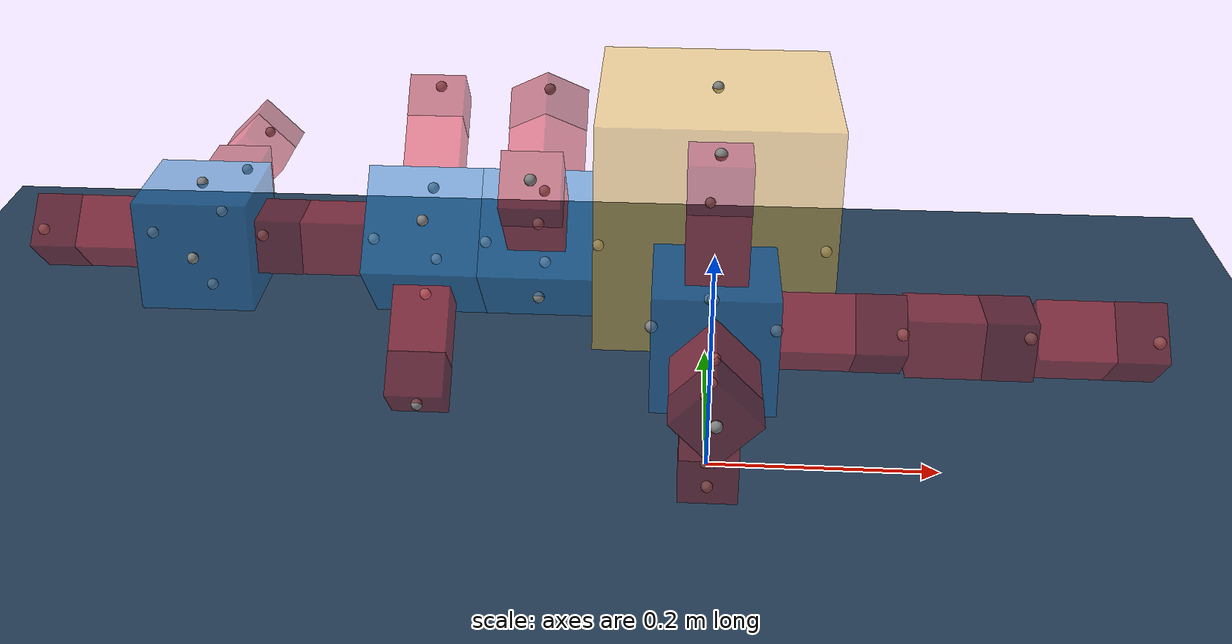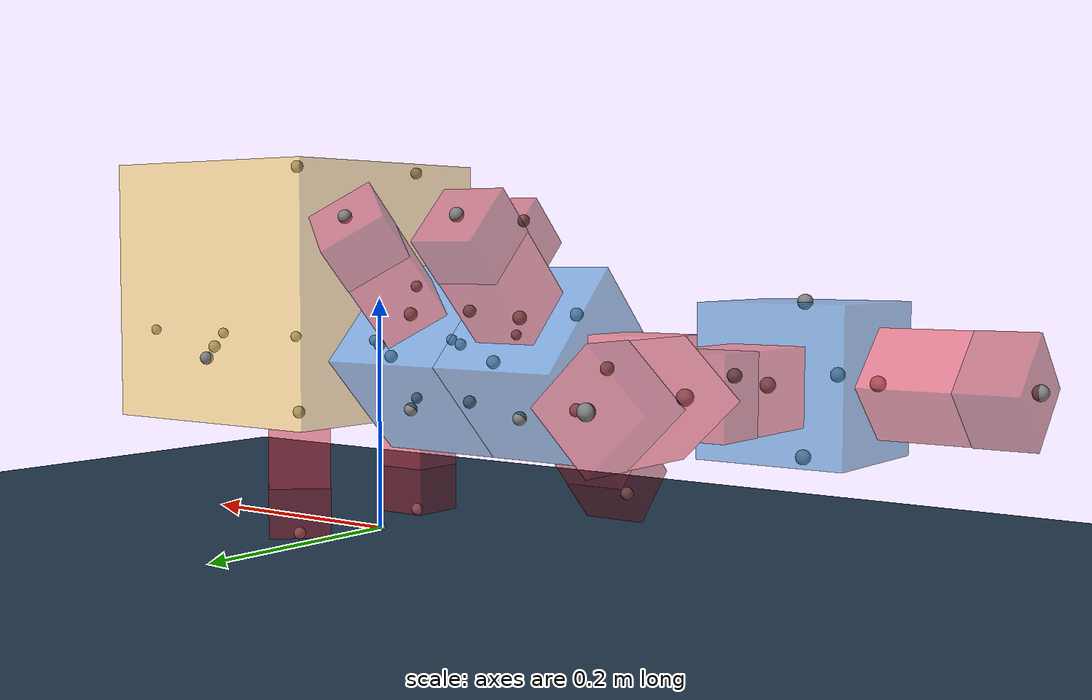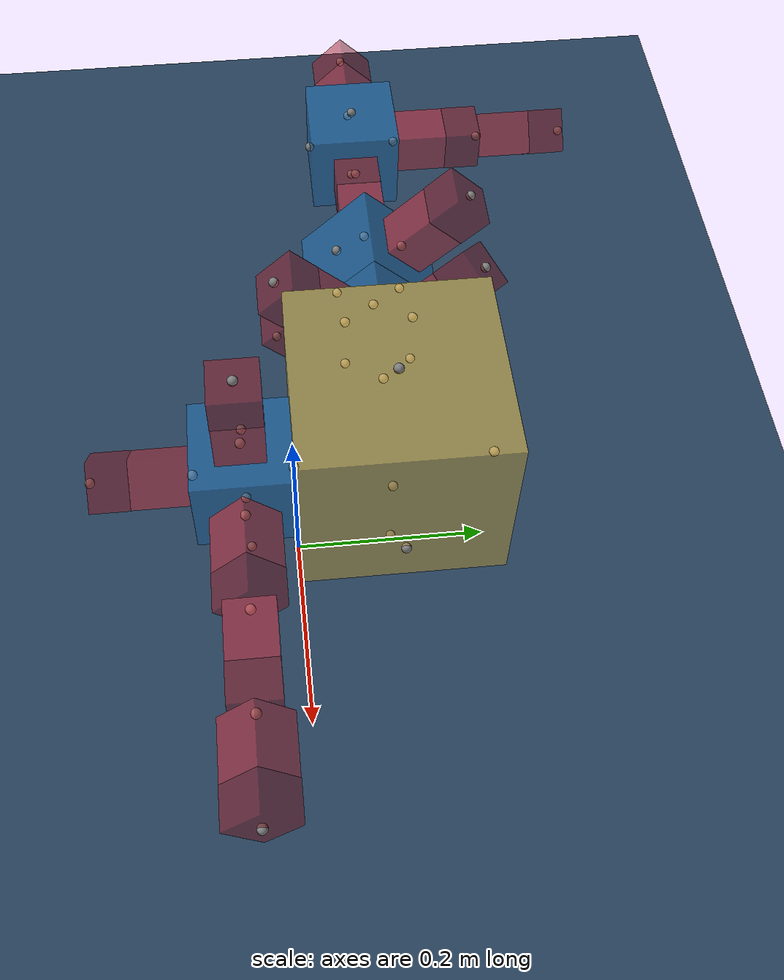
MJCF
<mujoco model="Simple Flat World">
  <compiler angle="radian"/>

  <option integrator="implicitfast"/>

  <visual>
    <global offwidth="1280" offheight="960"/>
  </visual>

  <default>
    <default class="robot1_main">
      <default class="robot1_0-8-3-main">
        <default class="robot1_0-8-3-8-15-0-main"/>
        <default class="robot1_0-8-3-8-28-2-main"/>
        <default class="robot1_0-8-3-8-9-4-main"/>
        <default class="robot1_0-8-3-15-24-5-main"/>
        <default class="robot1_0-8-3-15-3-0-main"/>
        <default class="robot1_0-8-3-15-13-4-main"/>
      </default>
      <default class="robot1_0-18-1-main"/>
      <default class="robot1_0-27-5-main"/>
      <default class="robot1_18-5-5-main"/>
      <default class="robot1_18-12-3-main"/>
      <default class="robot1_18-20-2-main"/>
      <default class="robot1_18-22-0-main"/>
      <default class="robot1_3-10-0-main"/>
      <default class="robot1_5-23-0-main"/>
      <default class="robot1_23-26-0-main"/>
      <default class="robot1_10-25-2-main"/>
      <default class="robot1_10-16-0-main"/>
      <default class="robot1_25-2-0-main"/>
    </default>
  </default>

  <asset>
    <texture type="2d" colorspace="auto" name="floor" builtin="checker" rgb1="0.1 0.2 0.3" rgb2="0.2 0.3 0.4" width="600" height="600"/>
    <material name="floor" texture="floor" texuniform="true" texrepeat="3 3"/>
  </asset>

  <worldbody>
    <site pos="0 0 0"/>
    <camera name="ortho-cam" pos="-5 0 5" quat="0.653281 0.270598 -0.270598 -0.653281" orthographic="true" fovy="5"/>
    <light name="light" pos="0 0 1" dir="0 0 -1" type="directional" castshadow="false"/>
    <body name="floor">
      <geom name="floor" size="5 5 0.5" type="plane" material="floor"/>
    </body>
    <body name="robot1_world" pos="0 0 0.21">
      <joint type="free"/>
      <body name="robot1_core">
        <geom name="robot1_core" size="0.1 0.1 0.1" pos="0 0.1 0" type="box" mass="1" rgba="0.992157 0.792157 0.25098 0.5"/>
        <site name="robot1_core-front" pos="0 0.2 -0.05"/>
        <site name="robot1_core-back" pos="0 0 -0.05" quat="0 0 0 1"/>
        <site name="robot1_core-left" pos="-0.1 0.1 -0.05" quat="0.707107 0 0 0.707107"/>
        <site name="robot1_core-right" pos="0.1 0.1 -0.05" quat="-0.707107 0 0 0.707107"/>
        <site name="robot1_core-top" pos="0 0.1 0.1" quat="0.707107 0.707107 0 0"/>
        <site name="robot1_core-bottom" pos="0 0.1 -0.1" quat="0 0 -0.707107 0.707107"/>
        <body name="robot1_0-8-3-brick" pos="-0.1 0.1 -0.05" quat="-0.653215 -0.270759 0.270759 -0.653215">
          <geom name="robot1_0-8-3-brick" size="0.05 0.05 0.05" pos="0 0.05 0" type="box" mass="0.055" rgba="0.109804 0.466667 0.764706 0.5"/>
          <site name="robot1_0-8-3-brick-front" pos="0 0.1 0"/>
          <site name="robot1_0-8-3-brick-left" pos="-0.05 0.05 0" quat="0.707107 0 0 0.707107"/>
          <site name="robot1_0-8-3-brick-right" pos="0.05 0.05 0" quat="-0.707107 0 0 0.707107"/>
          <site name="robot1_0-8-3-brick-top" pos="0 0.05 0.05" quat="0.707107 0.707107 0 0"/>
          <site name="robot1_0-8-3-brick-bottom" pos="0 0.05 -0.05" quat="0 0 -0.707107 0.707107"/>
          <body name="robot1_0-8-3-8-15-0-brick" pos="0 0.1 0" quat="0.707107 0 0.707107 0">
            <geom name="robot1_0-8-3-8-15-0-brick" size="0.05 0.05 0.05" pos="0 0.05 0" type="box" mass="0.055" rgba="0.109804 0.466667 0.764706 0.5"/>
            <site name="robot1_0-8-3-8-15-0-brick-front" pos="0 0.1 0"/>
            <site name="robot1_0-8-3-8-15-0-brick-left" pos="-0.05 0.05 0" quat="0.707107 0 0 0.707107"/>
            <site name="robot1_0-8-3-8-15-0-brick-right" pos="0.05 0.05 0" quat="-0.707107 0 0 0.707107"/>
            <site name="robot1_0-8-3-8-15-0-brick-top" pos="0 0.05 0.05" quat="0.707107 0.707107 0 0"/>
            <site name="robot1_0-8-3-8-15-0-brick-bottom" pos="0 0.05 -0.05" quat="0 0 -0.707107 0.707107"/>
            <body name="robot1_0-8-3-15-24-5-hinge" pos="0 0.05 -0.05" quat="0.5 -0.5 0.5 -0.5">
              <body name="robot1_0-8-3-15-24-5-stator" pos="0 0.03 0">
                <geom name="robot1_0-8-3-15-24-5-stator" size="0.02475 0.0297 0.02475" type="box" mass="0.02" rgba="0.87451 0.160784 0.207843 0.5"/>
              </body>
              <body name="robot1_0-8-3-15-24-5-rotor" pos="0 0.08 0">
                <joint name="robot1_0-8-3-15-24-5-servo" pos="0 -0.02 0" axis="0 0 1"/>
                <geom name="robot1_0-8-3-15-24-5-rotor" size="0.025 0.02 0.025" type="box" mass="0.04" rgba="0.627451 0.0941176 0.129412 0.5"/>
                <site name="robot1_0-8-3-15-24-5-hinge-front" pos="0 0.02 0"/>
              </body>
            </body>
            <body name="robot1_0-8-3-15-3-0-hinge" pos="0 0.1 0" quat="0.923785 0 0.382911 0">
              <body name="robot1_0-8-3-15-3-0-stator" pos="0 0.03 0">
                <geom name="robot1_0-8-3-15-3-0-stator" size="0.02475 0.0297 0.02475" type="box" mass="0.02" rgba="0.87451 0.160784 0.207843 0.5"/>
              </body>
              <body name="robot1_0-8-3-15-3-0-rotor" pos="0 0.08 0">
                <joint name="robot1_0-8-3-15-3-0-servo" pos="0 -0.02 0" axis="0 0 1"/>
                <geom name="robot1_0-8-3-15-3-0-rotor" size="0.025 0.02 0.025" type="box" mass="0.04" rgba="0.627451 0.0941176 0.129412 0.5"/>
                <site name="robot1_0-8-3-15-3-0-hinge-front" pos="0 0.02 0"/>
                <body name="robot1_3-10-0-brick" pos="0 0.02 0" quat="-0.707107 0 0.707107 0">
                  <geom name="robot1_3-10-0-brick" size="0.05 0.05 0.05" pos="0 0.05 0" type="box" mass="0.055" rgba="0.109804 0.466667 0.764706 0.5"/>
                  <site name="robot1_3-10-0-brick-front" pos="0 0.1 0"/>
                  <site name="robot1_3-10-0-brick-left" pos="-0.05 0.05 0" quat="0.707107 0 0 0.707107"/>
                  <site name="robot1_3-10-0-brick-right" pos="0.05 0.05 0" quat="-0.707107 0 0 0.707107"/>
                  <site name="robot1_3-10-0-brick-top" pos="0 0.05 0.05" quat="0.707107 0.707107 0 0"/>
                  <site name="robot1_3-10-0-brick-bottom" pos="0 0.05 -0.05" quat="0 0 -0.707107 0.707107"/>
                  <body name="robot1_10-25-2-hinge" pos="0.05 0.05 0" quat="-0.5 -0.5 -0.5 0.5">
                    <body name="robot1_10-25-2-stator" pos="0 0.03 0">
                      <geom name="robot1_10-25-2-stator" size="0.02475 0.0297 0.02475" type="box" mass="0.02" rgba="0.87451 0.160784 0.207843 0.5"/>
                    </body>
                    <body name="robot1_10-25-2-rotor" pos="0 0.08 0">
                      <joint name="robot1_10-25-2-servo" pos="0 -0.02 0" axis="0 0 1"/>
                      <geom name="robot1_10-25-2-rotor" size="0.025 0.02 0.025" type="box" mass="0.04" rgba="0.627451 0.0941176 0.129412 0.5"/>
                      <site name="robot1_10-25-2-hinge-front" pos="0 0.02 0"/>
                      <body name="robot1_25-2-0-hinge" pos="0 0.02 0" quat="-0.923785 0 0.382911 0">
                        <body name="robot1_25-2-0-stator" pos="0 0.03 0">
                          <geom name="robot1_25-2-0-stator" size="0.02475 0.0297 0.02475" type="box" mass="0.02" rgba="0.87451 0.160784 0.207843 0.5"/>
                        </body>
                        <body name="robot1_25-2-0-rotor" pos="0 0.08 0">
                          <joint name="robot1_25-2-0-servo" pos="0 -0.02 0" axis="0 0 1"/>
                          <geom name="robot1_25-2-0-rotor" size="0.025 0.02 0.025" type="box" mass="0.04" rgba="0.627451 0.0941176 0.129412 0.5"/>
                          <site name="robot1_25-2-0-hinge-front" pos="0 0.02 0"/>
                        </body>
                      </body>
                    </body>
                  </body>
                  <body name="robot1_10-16-0-hinge" pos="0 0.1 0" quat="-0.923785 0 0.382911 0">
                    <body name="robot1_10-16-0-stator" pos="0 0.03 0">
                      <geom name="robot1_10-16-0-stator" size="0.02475 0.0297 0.02475" type="box" mass="0.02" rgba="0.87451 0.160784 0.207843 0.5"/>
                    </body>
                    <body name="robot1_10-16-0-rotor" pos="0 0.08 0">
                      <joint name="robot1_10-16-0-servo" pos="0 -0.02 0" axis="0 0 1"/>
                      <geom name="robot1_10-16-0-rotor" size="0.025 0.02 0.025" type="box" mass="0.04" rgba="0.627451 0.0941176 0.129412 0.5"/>
                      <site name="robot1_10-16-0-hinge-front" pos="0 0.02 0"/>
                    </body>
                  </body>
                </body>
              </body>
            </body>
            <body name="robot1_0-8-3-15-13-4-hinge" pos="0 0.05 0.05" quat="0.707107 0.707107 0 0">
              <body name="robot1_0-8-3-15-13-4-stator" pos="0 0.03 0">
                <geom name="robot1_0-8-3-15-13-4-stator" size="0.02475 0.0297 0.02475" type="box" mass="0.02" rgba="0.87451 0.160784 0.207843 0.5"/>
              </body>
              <body name="robot1_0-8-3-15-13-4-rotor" pos="0 0.08 0">
                <joint name="robot1_0-8-3-15-13-4-servo" pos="0 -0.02 0" axis="0 0 1"/>
                <geom name="robot1_0-8-3-15-13-4-rotor" size="0.025 0.02 0.025" type="box" mass="0.04" rgba="0.627451 0.0941176 0.129412 0.5"/>
                <site name="robot1_0-8-3-15-13-4-hinge-front" pos="0 0.02 0"/>
              </body>
            </body>
          </body>
          <body name="robot1_0-8-3-8-28-2-hinge" pos="0.05 0.05 0" quat="-0.653215 -0.270759 -0.270759 0.653215">
            <body name="robot1_0-8-3-8-28-2-stator" pos="0 0.03 0">
              <geom name="robot1_0-8-3-8-28-2-stator" size="0.02475 0.0297 0.02475" type="box" mass="0.02" rgba="0.87451 0.160784 0.207843 0.5"/>
            </body>
            <body name="robot1_0-8-3-8-28-2-rotor" pos="0 0.08 0">
              <joint name="robot1_0-8-3-8-28-2-servo" pos="0 -0.02 0" axis="0 0 1"/>
              <geom name="robot1_0-8-3-8-28-2-rotor" size="0.025 0.02 0.025" type="box" mass="0.04" rgba="0.627451 0.0941176 0.129412 0.5"/>
              <site name="robot1_0-8-3-8-28-2-hinge-front" pos="0 0.02 0"/>
            </body>
          </body>
          <body name="robot1_0-8-3-8-9-4-hinge" pos="0 0.05 0.05" quat="-0.5 -0.5 0.5 0.5">
            <body name="robot1_0-8-3-8-9-4-stator" pos="0 0.03 0">
              <geom name="robot1_0-8-3-8-9-4-stator" size="0.02475 0.0297 0.02475" type="box" mass="0.02" rgba="0.87451 0.160784 0.207843 0.5"/>
            </body>
            <body name="robot1_0-8-3-8-9-4-rotor" pos="0 0.08 0">
              <joint name="robot1_0-8-3-8-9-4-servo" pos="0 -0.02 0" axis="0 0 1"/>
              <geom name="robot1_0-8-3-8-9-4-rotor" size="0.025 0.02 0.025" type="box" mass="0.04" rgba="0.627451 0.0941176 0.129412 0.5"/>
              <site name="robot1_0-8-3-8-9-4-hinge-front" pos="0 0.02 0"/>
            </body>
          </body>
        </body>
        <body name="robot1_0-18-1-brick" pos="0 0 -0.05" quat="0 -0.707107 0 0.707107">
          <geom name="robot1_0-18-1-brick" size="0.05 0.05 0.05" pos="0 0.05 0" type="box" mass="0.055" rgba="0.109804 0.466667 0.764706 0.5"/>
          <site name="robot1_0-18-1-brick-front" pos="0 0.1 0"/>
          <site name="robot1_0-18-1-brick-left" pos="-0.05 0.05 0" quat="0.707107 0 0 0.707107"/>
          <site name="robot1_0-18-1-brick-right" pos="0.05 0.05 0" quat="-0.707107 0 0 0.707107"/>
          <site name="robot1_0-18-1-brick-top" pos="0 0.05 0.05" quat="0.707107 0.707107 0 0"/>
          <site name="robot1_0-18-1-brick-bottom" pos="0 0.05 -0.05" quat="0 0 -0.707107 0.707107"/>
          <body name="robot1_18-5-5-hinge" pos="0 0.05 -0.05" quat="0.270759 -0.270759 -0.653215 0.653215">
            <body name="robot1_18-5-5-stator" pos="0 0.03 0">
              <geom name="robot1_18-5-5-stator" size="0.02475 0.0297 0.02475" type="box" mass="0.02" rgba="0.87451 0.160784 0.207843 0.5"/>
            </body>
            <body name="robot1_18-5-5-rotor" pos="0 0.08 0">
              <joint name="robot1_18-5-5-servo" pos="0 -0.02 0" axis="0 0 1"/>
              <geom name="robot1_18-5-5-rotor" size="0.025 0.02 0.025" type="box" mass="0.04" rgba="0.627451 0.0941176 0.129412 0.5"/>
              <site name="robot1_18-5-5-hinge-front" pos="0 0.02 0"/>
              <body name="robot1_5-23-0-hinge" pos="0 0.02 0" quat="0.923785 0 0.382911 0">
                <body name="robot1_5-23-0-stator" pos="0 0.03 0">
                  <geom name="robot1_5-23-0-stator" size="0.02475 0.0297 0.02475" type="box" mass="0.02" rgba="0.87451 0.160784 0.207843 0.5"/>
                </body>
                <body name="robot1_5-23-0-rotor" pos="0 0.08 0">
                  <joint name="robot1_5-23-0-servo" pos="0 -0.02 0" axis="0 0 1"/>
                  <geom name="robot1_5-23-0-rotor" size="0.025 0.02 0.025" type="box" mass="0.04" rgba="0.627451 0.0941176 0.129412 0.5"/>
                  <site name="robot1_5-23-0-hinge-front" pos="0 0.02 0"/>
                  <body name="robot1_23-26-0-hinge" pos="0 0.02 0" quat="0.923785 0 0.382911 0">
                    <body name="robot1_23-26-0-stator" pos="0 0.03 0">
                      <geom name="robot1_23-26-0-stator" size="0.02475 0.0297 0.02475" type="box" mass="0.02" rgba="0.87451 0.160784 0.207843 0.5"/>
                    </body>
                    <body name="robot1_23-26-0-rotor" pos="0 0.08 0">
                      <joint name="robot1_23-26-0-servo" pos="0 -0.02 0" axis="0 0 1"/>
                      <geom name="robot1_23-26-0-rotor" size="0.025 0.02 0.025" type="box" mass="0.04" rgba="0.627451 0.0941176 0.129412 0.5"/>
                      <site name="robot1_23-26-0-hinge-front" pos="0 0.02 0"/>
                    </body>
                  </body>
                </body>
              </body>
            </body>
          </body>
          <body name="robot1_18-12-3-hinge" pos="-0.05 0.05 0" quat="0.707107 0 0 0.707107">
            <body name="robot1_18-12-3-stator" pos="0 0.03 0">
              <geom name="robot1_18-12-3-stator" size="0.02475 0.0297 0.02475" type="box" mass="0.02" rgba="0.87451 0.160784 0.207843 0.5"/>
            </body>
            <body name="robot1_18-12-3-rotor" pos="0 0.08 0">
              <joint name="robot1_18-12-3-servo" pos="0 -0.02 0" axis="0 0 1"/>
              <geom name="robot1_18-12-3-rotor" size="0.025 0.02 0.025" type="box" mass="0.04" rgba="0.627451 0.0941176 0.129412 0.5"/>
              <site name="robot1_18-12-3-hinge-front" pos="0 0.02 0"/>
            </body>
          </body>
          <body name="robot1_18-20-2-hinge" pos="0.05 0.05 0" quat="-0.707107 0 0 0.707107">
            <body name="robot1_18-20-2-stator" pos="0 0.03 0">
              <geom name="robot1_18-20-2-stator" size="0.02475 0.0297 0.02475" type="box" mass="0.02" rgba="0.87451 0.160784 0.207843 0.5"/>
            </body>
            <body name="robot1_18-20-2-rotor" pos="0 0.08 0">
              <joint name="robot1_18-20-2-servo" pos="0 -0.02 0" axis="0 0 1"/>
              <geom name="robot1_18-20-2-rotor" size="0.025 0.02 0.025" type="box" mass="0.04" rgba="0.627451 0.0941176 0.129412 0.5"/>
              <site name="robot1_18-20-2-hinge-front" pos="0 0.02 0"/>
            </body>
          </body>
          <body name="robot1_18-22-0-hinge" pos="0 0.1 0" quat="0.923785 0 0.382911 0">
            <body name="robot1_18-22-0-stator" pos="0 0.03 0">
              <geom name="robot1_18-22-0-stator" size="0.02475 0.0297 0.02475" type="box" mass="0.02" rgba="0.87451 0.160784 0.207843 0.5"/>
            </body>
            <body name="robot1_18-22-0-rotor" pos="0 0.08 0">
              <joint name="robot1_18-22-0-servo" pos="0 -0.02 0" axis="0 0 1"/>
              <geom name="robot1_18-22-0-rotor" size="0.025 0.02 0.025" type="box" mass="0.04" rgba="0.627451 0.0941176 0.129412 0.5"/>
              <site name="robot1_18-22-0-hinge-front" pos="0 0.02 0"/>
            </body>
          </body>
        </body>
        <body name="robot1_0-27-5-hinge" pos="0 0.1 -0.1" quat="0.653215 -0.653215 0.270759 -0.270759">
          <body name="robot1_0-27-5-stator" pos="0 0.03 0">
            <geom name="robot1_0-27-5-stator" size="0.02475 0.0297 0.02475" type="box" mass="0.02" rgba="0.87451 0.160784 0.207843 0.5"/>
          </body>
          <body name="robot1_0-27-5-rotor" pos="0 0.08 0">
            <joint name="robot1_0-27-5-servo" pos="0 -0.02 0" axis="0 0 1"/>
            <geom name="robot1_0-27-5-rotor" size="0.025 0.02 0.025" type="box" mass="0.04" rgba="0.627451 0.0941176 0.129412 0.5"/>
            <site name="robot1_0-27-5-hinge-front" pos="0 0.02 0"/>
          </body>
        </body>
      </body>
    </body>
  </worldbody>

  <contact>
    <exclude body1="robot1_0-8-3-15-24-5-stator" body2="robot1_0-8-3-15-24-5-rotor"/>
    <exclude body1="robot1_0-8-3-15-3-0-stator" body2="robot1_0-8-3-15-3-0-rotor"/>
    <exclude body1="robot1_10-25-2-stator" body2="robot1_10-25-2-rotor"/>
    <exclude body1="robot1_25-2-0-stator" body2="robot1_25-2-0-rotor"/>
    <exclude body1="robot1_10-16-0-stator" body2="robot1_10-16-0-rotor"/>
    <exclude body1="robot1_0-8-3-15-13-4-stator" body2="robot1_0-8-3-15-13-4-rotor"/>
    <exclude body1="robot1_0-8-3-8-28-2-stator" body2="robot1_0-8-3-8-28-2-rotor"/>
    <exclude body1="robot1_0-8-3-8-9-4-stator" body2="robot1_0-8-3-8-9-4-rotor"/>
    <exclude body1="robot1_18-5-5-stator" body2="robot1_18-5-5-rotor"/>
    <exclude body1="robot1_5-23-0-stator" body2="robot1_5-23-0-rotor"/>
    <exclude body1="robot1_23-26-0-stator" body2="robot1_23-26-0-rotor"/>
    <exclude body1="robot1_18-12-3-stator" body2="robot1_18-12-3-rotor"/>
    <exclude body1="robot1_18-20-2-stator" body2="robot1_18-20-2-rotor"/>
    <exclude body1="robot1_18-22-0-stator" body2="robot1_18-22-0-rotor"/>
    <exclude body1="robot1_0-27-5-stator" body2="robot1_0-27-5-rotor"/>
  </contact>

  <actuator>
    <general name="robot1_0-8-3-8-28-2-servo" joint="robot1_0-8-3-8-28-2-servo" ctrlrange="-1.5708 1.5708" dynprm="0 0 0 0 0 0 0 0 0 0" biastype="affine" biasprm="0 -1 -1"/>
    <general name="robot1_0-8-3-8-9-4-servo" joint="robot1_0-8-3-8-9-4-servo" ctrlrange="-1.5708 1.5708" dynprm="0 0 0 0 0 0 0 0 0 0" biastype="affine" biasprm="0 -1 -1"/>
    <general name="robot1_0-8-3-15-24-5-servo" joint="robot1_0-8-3-15-24-5-servo" ctrlrange="-1.5708 1.5708" dynprm="0 0 0 0 0 0 0 0 0 0" biastype="affine" biasprm="0 -1 -1"/>
    <general name="robot1_0-8-3-15-3-0-servo" joint="robot1_0-8-3-15-3-0-servo" ctrlrange="-1.5708 1.5708" dynprm="0 0 0 0 0 0 0 0 0 0" biastype="affine" biasprm="0 -1 -1"/>
    <general name="robot1_0-8-3-15-13-4-servo" joint="robot1_0-8-3-15-13-4-servo" ctrlrange="-1.5708 1.5708" dynprm="0 0 0 0 0 0 0 0 0 0" biastype="affine" biasprm="0 -1 -1"/>
    <general name="robot1_0-27-5-servo" joint="robot1_0-27-5-servo" ctrlrange="-1.5708 1.5708" dynprm="0 0 0 0 0 0 0 0 0 0" biastype="affine" biasprm="0 -1 -1"/>
    <general name="robot1_18-5-5-servo" joint="robot1_18-5-5-servo" ctrlrange="-1.5708 1.5708" dynprm="0 0 0 0 0 0 0 0 0 0" biastype="affine" biasprm="0 -1 -1"/>
    <general name="robot1_18-12-3-servo" joint="robot1_18-12-3-servo" ctrlrange="-1.5708 1.5708" dynprm="0 0 0 0 0 0 0 0 0 0" biastype="affine" biasprm="0 -1 -1"/>
    <general name="robot1_18-20-2-servo" joint="robot1_18-20-2-servo" ctrlrange="-1.5708 1.5708" dynprm="0 0 0 0 0 0 0 0 0 0" biastype="affine" biasprm="0 -1 -1"/>
    <general name="robot1_18-22-0-servo" joint="robot1_18-22-0-servo" ctrlrange="-1.5708 1.5708" dynprm="0 0 0 0 0 0 0 0 0 0" biastype="affine" biasprm="0 -1 -1"/>
    <general name="robot1_5-23-0-servo" joint="robot1_5-23-0-servo" ctrlrange="-1.5708 1.5708" dynprm="0 0 0 0 0 0 0 0 0 0" biastype="affine" biasprm="0 -1 -1"/>
    <general name="robot1_23-26-0-servo" joint="robot1_23-26-0-servo" ctrlrange="-1.5708 1.5708" dynprm="0 0 0 0 0 0 0 0 0 0" biastype="affine" biasprm="0 -1 -1"/>
    <general name="robot1_10-25-2-servo" joint="robot1_10-25-2-servo" ctrlrange="-1.5708 1.5708" dynprm="0 0 0 0 0 0 0 0 0 0" biastype="affine" biasprm="0 -1 -1"/>
    <general name="robot1_10-16-0-servo" joint="robot1_10-16-0-servo" ctrlrange="-1.5708 1.5708" dynprm="0 0 0 0 0 0 0 0 0 0" biastype="affine" biasprm="0 -1 -1"/>
    <general name="robot1_25-2-0-servo" joint="robot1_25-2-0-servo" ctrlrange="-1.5708 1.5708" dynprm="0 0 0 0 0 0 0 0 0 0" biastype="affine" biasprm="0 -1 -1"/>
  </actuator>
</mujoco>
